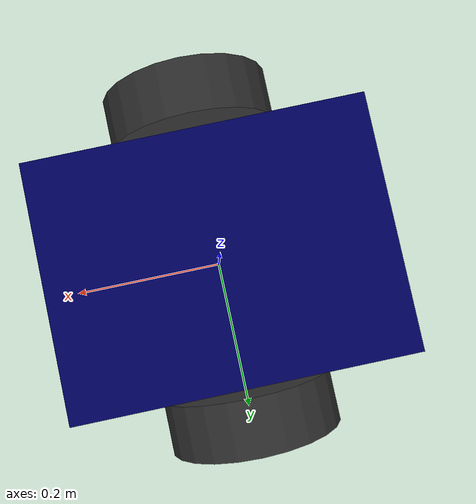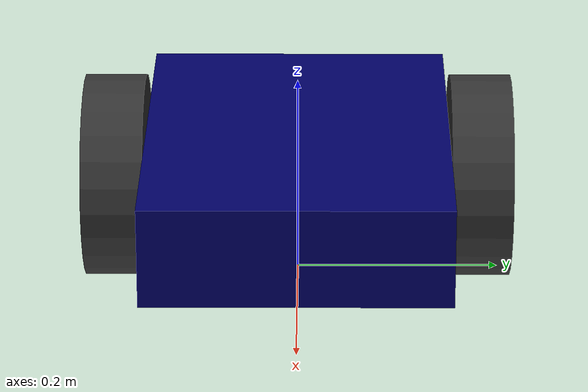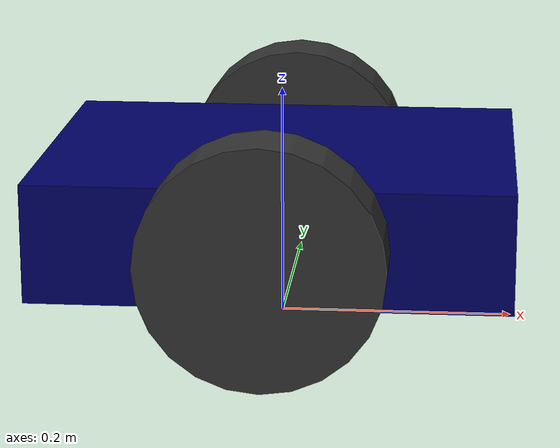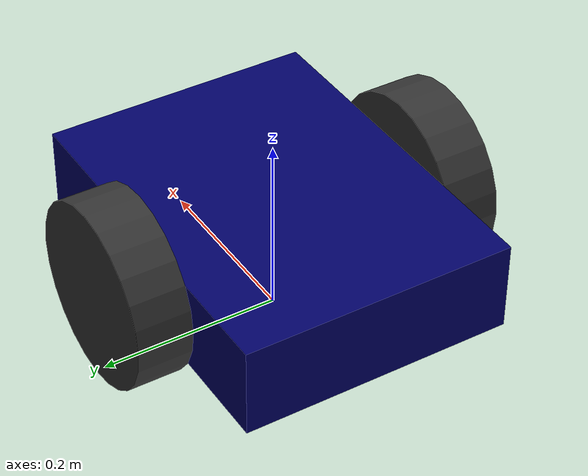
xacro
<?xml version="1.0"?>
<robot name="mybot" xmlns:xacro="http://ros.org/wiki/xacro">

  <!-- Params -->
  <xacro:property name="chassis_length" value="0.4"/>
  <xacro:property name="chassis_width" value="0.3"/>
  <xacro:property name="chassis_height" value="0.1"/>
  <xacro:property name="wheel_radius" value="0.1"/>
  <xacro:property name="wheel_width" value="0.06"/>
  <xacro:property name="wheel_offset_x" value="${chassis_length/2 - 0.05}"/>
  <xacro:property name="wheel_offset_y" value="${chassis_width/2 + wheel_width/2}"/>

  <material name="blue">
    <color rgba="0 0 0.4 1.0"/>
  </material>

  <material name="black">
    <color rgba="0.2 0.2 0.2 1.0"/>
  </material>

  <link name="world">
  </link>

  <!-- Chassis -->
  <link name="base_link">
    <visual>
      <geometry>
        <box size="${chassis_length} ${chassis_width} ${chassis_height}"/>
      </geometry>
      <material name="blue"/>
    </visual>
    <collision>
      <geometry>
        <box size="${chassis_length} ${chassis_width} ${chassis_height}"/>
      </geometry>
    </collision>
    <inertial>
      <mass value="2.0"/>
      <inertia ixx="0.02" ixy="0.0" ixz="0.0"
               iyy="0.02" iyz="0.0"
               izz="0.04"/>
    </inertial>
  </link>

  <joint name="world_base_link_joint" type="fixed">
    <parent link="world"/>
    <child link="base_link"/>
    <origin xyz="0 0 ${wheel_radius}" rpy="0 0 0"/>
  </joint>

  <!-- Left Wheel -->
  <link name="left_wheel_link">
    <visual>
      <geometry>
        <cylinder length="${wheel_width}" radius="${wheel_radius}"/>
      </geometry>
      <origin xyz="0 0 0" rpy="0 0 0"/>
      <material name="black"/>
    </visual>
    <collision>
      <geometry>
        <cylinder length="${wheel_width}" radius="${wheel_radius}"/>
      </geometry>
      <origin xyz="0 0 0" rpy="0 0 0"/>
    </collision>
    <inertial>
      <mass value="0.2"/>
      <inertia ixx="0.001" ixy="0.0" ixz="0.0"
               iyy="0.001" iyz="0.0"
               izz="0.001"/>
    </inertial>
  </link>

  <joint name="left_wheel_joint" type="continuous">
    <parent link="base_link"/>
    <child link="left_wheel_link"/>
    <origin xyz="0 ${chassis_width/2 + wheel_width/2} 0" rpy="1.57 0 0"/>
    <axis xyz="0 0 1"/>
  </joint>

  <!-- Right Wheel -->
  <link name="right_wheel_link">
    <visual>
      <geometry>
        <cylinder length="${wheel_width}" radius="${wheel_radius}"/>
      </geometry>
      <origin xyz="0 0 0" rpy="0 0 0"/>
      <material name="black"/>
    </visual>
    <collision>
      <geometry>
        <cylinder length="${wheel_width}" radius="${wheel_radius}"/>
      </geometry>
      <origin xyz="0 0 0" rpy="0 0 0"/>
    </collision>
    <inertial>
      <mass value="0.2"/>
      <inertia ixx="0.001" ixy="0.0" ixz="0.0"
               iyy="0.001" iyz="0.0"
               izz="0.001"/>
    </inertial>
  </link>

  <joint name="right_wheel_joint" type="continuous">
    <parent link="base_link"/>
    <child link="right_wheel_link"/>
    <origin xyz="0 -${chassis_width/2 + wheel_width/2} 0" rpy="1.57 0 0"/>
    <axis xyz="0 0 1"/>
  </joint>

</robot>
